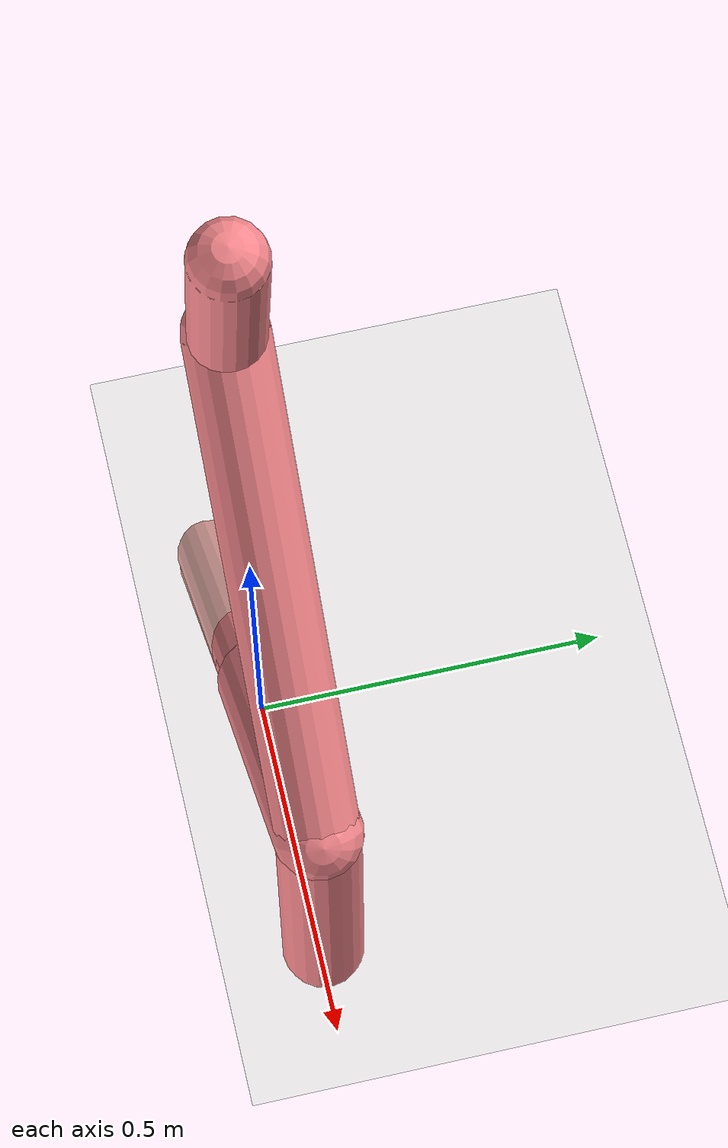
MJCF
<mujoco model="hopper">
  <compiler angle="degree" coordinate="global" inertiafromgeom="true"/>
  <default>
    <joint armature="1" damping="1" limited="true"/>
    <geom conaffinity="1" condim="1" contype="1" margin="0.001" rgba=".98 .54 .56 1." solimp=".8 .8 .01" solref=".02 1"/>
    <motor ctrllimited="true" ctrlrange="-.4 .4"/>
  </default>
  <option integrator="RK4" timestep="0.002"/>
  <visual>
    <headlight ambient=".1 .1 .1" diffuse=".6 .6 .6" specular="0.3 0.3 0.3"/>
    <map znear=".01"/>
    <quality shadowsize="16384"/>
  </visual>
  <worldbody>
    <light cutoff="100" diffuse="1 1 1" dir="-1 0 -1.3" directional="true" exponent="1" pos="1 0 1.3" specular=".1 .1 .1" castshadow="true"/>
    <geom conaffinity="1" condim="3" name="floor" pos="0 0 0" rgba="0.8 0.9 0.8 1" size="200 200 .125" type="plane" material="grid_new"/>
    <body name="0" pos="0 0 1.25">
      <camera name="track" mode="trackcom" pos="0 -3 1" xyaxes="1 0 0 0 0 1"/>
      <joint armature="0" axis="1 0 0" damping="0" limited="false" name="rootx" pos="0 0 0" stiffness="0" type="slide"/>
      <joint armature="0" axis="0 0 1" damping="0" limited="false" name="rootz" pos="0 0 0" ref="1.25" stiffness="0" type="slide"/>
      <joint armature="0" axis="0 1 0" damping="0" limited="false" name="0_joint" pos="0 0 1.25" stiffness="0" type="hinge"/>
      <geom friction="0.9" fromto="0.037417 0 1.428105 -0.030961 0 1.102624" size="0.049908" type="capsule"/>
      <body name="1" pos="-0.030961 0 1.102624">
        <joint axis="0 -1 0" name="1_joint" pos="-0.030961 0 1.102624" range="-360 360" type="hinge"/>
        <geom friction="2.0" fromto="-0.038027 0 1.110285 0.42986 0 0.602922" size="0.055941" type="capsule"/>
        <body name="11" pos="0.42986 0 0.602922">
          <joint axis="0 -1 0" name="11_joint" pos="0.42986 0 0.602922" range="-360 360" type="hinge"/>
          <geom friction="2.0" fromto="0.43023 0 0.60335 -0.001622 0 0.103231" size="0.059783" type="capsule"/>
          <body name="111" pos="-0.001622 0 0.103231">
            <joint axis="0 -1 0" name="111_joint" pos="-0.001622 0 0.103231" range="-360 360" type="hinge"/>
            <geom friction="2.0" fromto="-0.001621 0 0.103232 -0.416246 0 -0.396753" size="0.052662" type="capsule"/>
          </body>
          <body name="211" pos="-0.001622 0 0.103231">
            <joint axis="0 -1 0" name="211_joint" pos="-0.001622 0 0.103231" range="-360 360" type="hinge"/>
            <geom friction="2.0" fromto="-0.001568 0 0.103294 -0.438147 0 -0.396719" size="0.052268" type="capsule"/>
          </body>
        </body>
        <body name="21" pos="0.42986 0 0.602922">
          <joint axis="0 -1 0" name="21_joint" pos="0.42986 0 0.602922" range="-360 360" type="hinge"/>
          <geom friction="2.0" fromto="0.42986 0 0.602937 0.41944 0 0.132767" size="0.056577" type="capsule"/>
        </body>
        <body name="31" pos="0.42986 0 0.602922">
          <joint axis="0 -1 0" name="31_joint" pos="0.42986 0 0.602922" range="-360 360" type="hinge"/>
          <geom friction="2.0" fromto="0.429866 0 0.602986 0.388953 0 0.142684" size="0.05061" type="capsule"/>
        </body>
      </body>
    </body>
  </worldbody>
  <actuator>
    <motor ctrllimited="true" ctrlrange="-1.0 1.0" gear="207.601586" joint="1_joint" name="1_joint"/>
    <motor ctrllimited="true" ctrlrange="-1.0 1.0" gear="277.738806" joint="11_joint" name="11_joint"/>
    <motor ctrllimited="true" ctrlrange="-1.0 1.0" gear="237.735746" joint="21_joint" name="21_joint"/>
    <motor ctrllimited="true" ctrlrange="-1.0 1.0" gear="156.622053" joint="111_joint" name="111_joint"/>
    <motor ctrllimited="true" ctrlrange="-1.0 1.0" gear="303.602687" joint="31_joint" name="31_joint"/>
    <motor ctrllimited="true" ctrlrange="-1.0 1.0" gear="211.721025" joint="211_joint" name="211_joint"/>
  </actuator>
  <asset>
    <texture type="skybox" builtin="gradient" rgb1=".4 .5 .6" rgb2="0 0 0" width="100" height="100"/>
    <texture builtin="flat" height="1278" mark="cross" markrgb="1 1 1" name="texgeom" random="0.01" rgb1="0.8 0.6 0.4" rgb2="0.8 0.6 0.4" type="cube" width="127"/>
    <texture builtin="checker" height="100" name="texplane" rgb1="0 0 0" rgb2="0.8 0.8 0.8" type="2d" width="100"/>
    <material name="MatPlane" reflectance="0.5" shininess="1" specular="1" texrepeat="60 60" texture="texplane"/>
    <material name="geom" texture="texgeom" texuniform="true"/>
    <texture name="grid_new" type="2d" builtin="checker" rgb1=".1 .3 .2" rgb2=".2 .4 .3" width="1000" height="1000" mark="none" markrgb=".8 .6 .4"/>
    <material name="grid_new" texture="grid_new" texrepeat="0.2 0.2" texuniform="true" reflectance=".2"/>
  </asset>
</mujoco>
